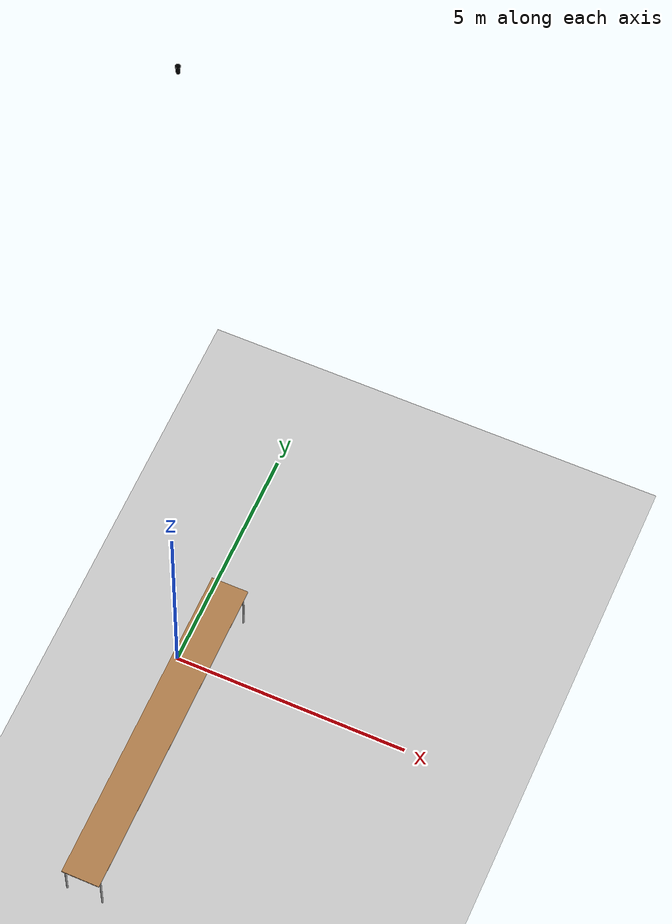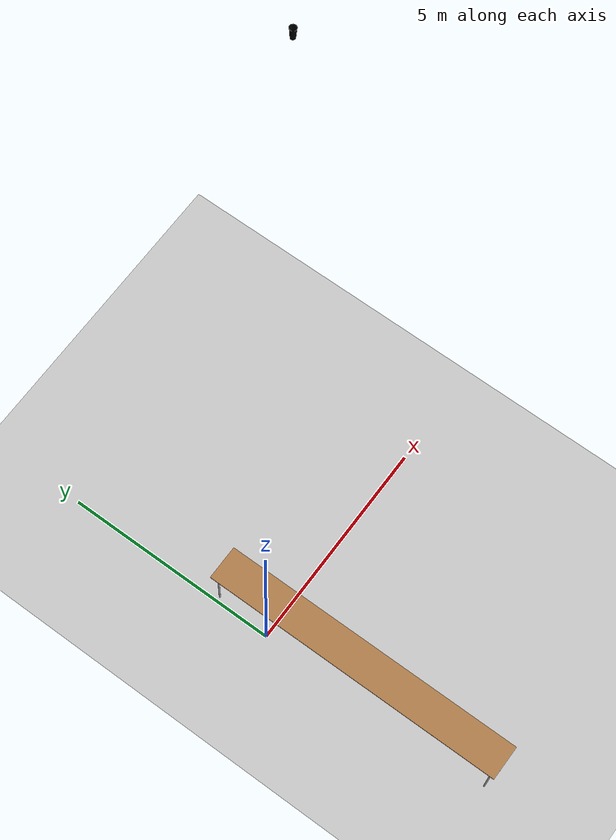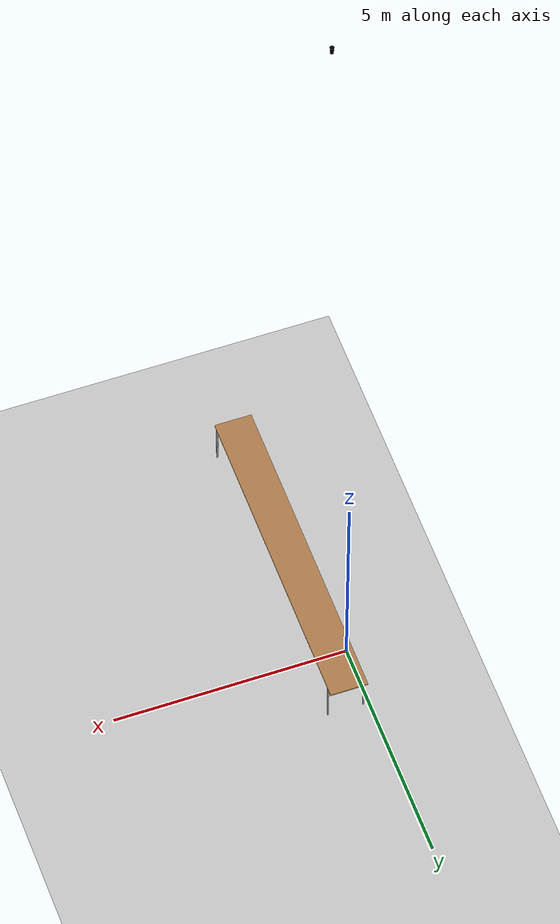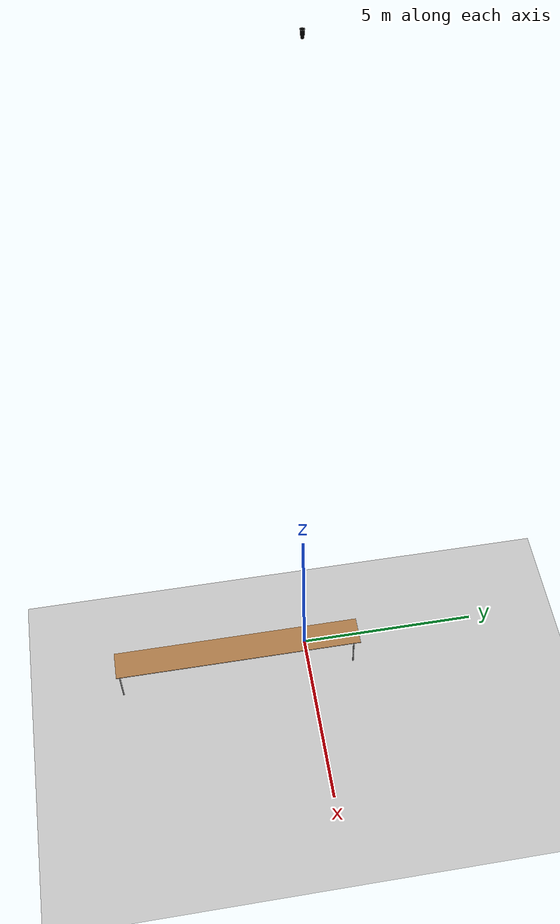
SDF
<sdf version="1.5">
 <world name="default">
  <include><uri>model://ground_plane</uri></include>
  <include><uri>model://sun</uri></include>
  <model name="table_model"><pose>0.5 0 0 0 0 1.570796</pose><include><uri>model://table</uri></include></model>
  <model name="cup"><pose>0.5 0 20 0 0  1.570796</pose><include><uri>model://ica_cup</uri></include></model>
  <physics type="ode">
   <max_step_size>0.02</max_step_size>
   <real_time_factor>1</real_time_factor>
   <real_time_update_rate>50</real_time_update_rate>
   <gravity>0 0 -9.8</gravity>
  </physics>
 </world>
</sdf>

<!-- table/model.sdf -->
<sdf version="1.5">
  <model name="table">
    <static>true</static>
    <link name="link">
      <collision name="surface">
        <pose>-2 0 1.0 0 0 0</pose>
        <geometry>
          <box>
            <size>7.0 0.8 0.03</size>
          </box>
        </geometry>
        <surface>
          <friction>
            <ode>
              <mu>0.6</mu>
              <mu2>0.6</mu2>
            </ode>
          </friction>
        </surface>
      </collision>
      <visual name="visual1">
        <pose>-2 0 1.0 0 0 0</pose>
        <geometry>
          <box>
            <size>7.0 0.8 0.03</size>
          </box>
        </geometry>
        <material>
          <script>
            <uri>file://media/materials/scripts/gazebo.material</uri>
            <name>Gazebo/Wood</name>
          </script>
        </material>
      </visual>
      <collision name="front_left_leg">
        <pose>-5.4 0.38 0.5 0 0 0</pose>
        <geometry>
          <cylinder>
            <radius>0.02</radius>
            <length>1.0</length>
          </cylinder>
        </geometry>
      </collision>
      <visual name="front_left_leg">
        <pose>-5.4 0.38 0.5 0 0 0</pose>
        <geometry>
          <cylinder>
            <radius>0.02</radius>
            <length>1.0</length>
          </cylinder>
        </geometry>
        <material>
          <script>
            <uri>file://media/materials/scripts/gazebo.material</uri>
            <name>Gazebo/Grey</name>
          </script>
        </material>
      </visual>
      <collision name="front_right_leg">
        <pose>-5.4 -0.38 0.5 0 0 0</pose>
        <geometry>
          <cylinder>
            <radius>0.02</radius>
            <length>1.0</length>
          </cylinder>
        </geometry>
      </collision>
      <visual name="front_right_leg">
        <pose>-5.4 -0.38 0.5 0 0 0</pose>
        <geometry>
          <cylinder>
            <radius>0.02</radius>
            <length>1.0</length>
          </cylinder>
        </geometry>
        <material>
          <script>
            <uri>file://media/materials/scripts/gazebo.material</uri>
            <name>Gazebo/Grey</name>
          </script>
        </material>
      </visual>
      <collision name="back_right_leg">
        <pose>1.3 -0.38 0.5 0 0 0</pose>
        <geometry>
          <cylinder>
            <radius>0.02</radius>
            <length>1.0</length>
          </cylinder>
        </geometry>
      </collision>
      <visual name="back_right_leg">
        <pose>1.3 -0.38 0.5 0 0 0</pose>
        <geometry>
          <cylinder>
            <radius>0.02</radius>
            <length>1.0</length>
          </cylinder>
        </geometry>
        <material>
          <script>
            <uri>file://media/materials/scripts/gazebo.material</uri>
            <name>Gazebo/Grey</name>
          </script>
        </material>
      </visual>
      <collision name="back_left_leg">
        <pose>1.3 0.38 0.5 0 0 0</pose>
        <geometry>
          <cylinder>
            <radius>0.02</radius>
            <length>1.0</length>
          </cylinder>
        </geometry>
      </collision>
      <visual name="back_left_leg">
        <pose>1.3 0.38 0.5 0 0 0</pose>
        <geometry>
          <cylinder>
            <radius>0.02</radius>
            <length>1.0</length>
          </cylinder>
        </geometry>
        <material>
          <script>
            <uri>file://media/materials/scripts/gazebo.material</uri>
            <name>Gazebo/Grey</name>
          </script>
        </material>
      </visual>
    </link>
  </model>
</sdf>

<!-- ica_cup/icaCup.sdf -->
<sdf version="1.5">
<model name="ica_cup">
    <link name="Cup-Body">
      <inertial>
	      <pose>0.0 0.0 0.1 0 0 0</pose>
        <inertia>
          <ixx>0.0003</ixx>
          <ixy>0</ixy>
          <ixz>0</ixz>
          <iyy>0.0003</iyy>
          <iyz>0</iyz>
          <izz>0.0001</izz>
        </inertia>
      </inertial>
      <collision name="collision">
	      <pose>0 0 0.075 0 0 0</pose>
        <geometry>
          <cylinder>
            <radius>0.04</radius>
            <length>0.15</length>
          </cylinder>
        </geometry>
        <surface>
          <friction>
            <ode>
              <mu>1</mu>
              <mu2>1</mu2>
              <slip1>1</slip1>
              <slip2>1</slip2>
            </ode>
          </friction>
          <contact>
            <ode>
              <kp>10000000.0</kp>
              <kd>1.0</kd>
              <min_depth>0.003</min_depth>
              <max_vel>0.01</max_vel>
            </ode>
          </contact>
        </surface>
      </collision>
      <visual name="visual">
        <material>
            <ambient>0 0 0 1</ambient>
            <diffuse>0 0 0 1</diffuse>
            <specular>0 0 0 0</specular>
            <emissive>1 1 1 1</emissive>
        </material>
	      <pose>0 0 0 0 0 0</pose>
        <geometry>
          <mesh>
            <uri>model://ica_cup/meshes/ica_cup.dae</uri>
          </mesh>
        </geometry>
      </visual>
    </link>
    <plugin name="cup_plugin" filename="libsim_cup_plugin.so">
      <notificatie_Interval> 1 </notificatie_Interval> <!-- interval used for sending info messages. 0 means every simulation tick, if update_Interval is set higher update_Interval will be used as Notification_interval-->
      <update_Interval> 0 </update_Interval>
      <warning_Interval> 2 </warning_Interval> <!--Pleas dont spam the error message constantly ?-->
      <cupHeight> 8 </cupHeight> <!--CM-->
      <cupWidthBottom> 4.9 </cupWidthBottom> <!--CM-->
      <cupWidthTop> 4.9 </cupWidthTop> <!--CM-->
      <cupWeight> 8 </cupWeight> <!--Gram-->
      <cupVolumeOfLiquid> 50 </cupVolumeOfLiquid> <!--ml-->
      <!-- 2.5*2.5*pi(3.14) * 8 = 157 ml-->
    </plugin>
  </model>
</sdf>
